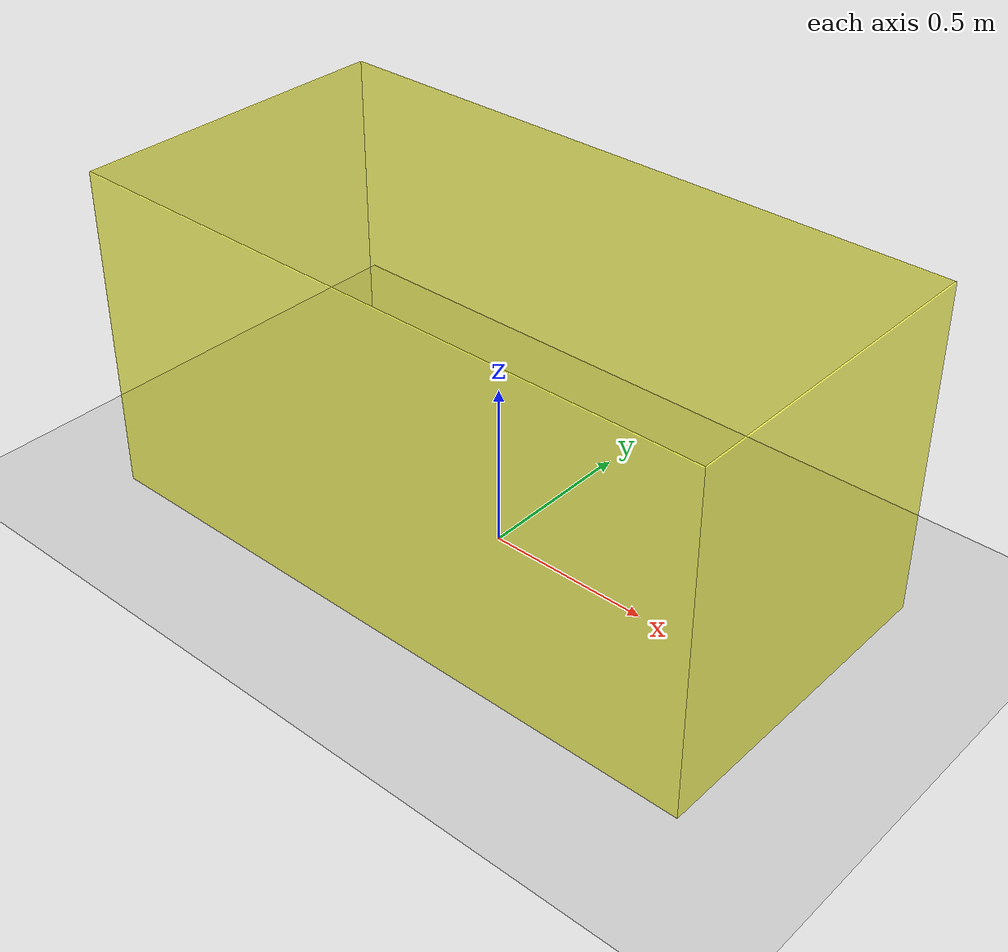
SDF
<sdf version="1.8">
 <world name="demo">
  <plugin filename="gz-sim-physics-system" name="gz::sim::systems::Physics"/>
  <plugin filename="gz-sim-sensors-system" name="gz::sim::systems::Sensors">
   <render_engine>ogre2</render_engine>
  </plugin>
  <plugin filename="gz-sim-scene-broadcaster-system" name="gz::sim::systems::SceneBroadcaster"/>
  <plugin filename="gz-sim-user-commands-system" name="gz::sim::systems::UserCommands"/>
  <plugin filename="BasicSystem" name="ros_gz_example_gazebo::BasicSystem"/>
  <plugin filename="FullSystem" name="ros_gz_example_gazebo::FullSystem"/>
  <light name="sun" type="directional">
   <pose>0 0 10 0 0 0</pose>
   <diffuse>0.8 0.8 0.8 1</diffuse>
   <specular>0.2 0.2 0.2 1</specular>
   <attenuation>
    <range>1000</range>
    <constant>0.9</constant>
    <linear>0.01</linear>
    <quadratic>0.001</quadratic>
   </attenuation>
   <direction>-0.5 0.1 -0.9</direction>
  </light>
  <model name="ground_plane">
   <static>true</static>
   <link name="link">
    <collision name="collision">
     <geometry><plane><normal>0 0 1</normal><size>100 100</size></plane></geometry>
    </collision>
    <visual name="visual">
     <geometry><plane><normal>0 0 1</normal><size>100 100</size></plane></geometry>
     <material>
      <ambient>0.8 0.8 0.8 1</ambient>
      <diffuse>0.8 0.8 0.8 1</diffuse>
      <specular>0.8 0.8 0.8 1</specular>
     </material>
    </visual>
   </link>
  </model>
  <model name="Cellule" canonical_link="Bas">
   <static>true</static>
   <link name="Bas">
    <pose relative_to="__model__">0 0 0 0 0 0</pose>
    <inertial>
     <mass>12</mass>
     <inertia><ixx>1</ixx><ixy>0</ixy><ixz>0</ixz><iyy>4</iyy><iyz>0</iyz><izz>5</izz></inertia>
    </inertial>
    <visual name="visual">
     <geometry><box><size>2.0 1.0 0.005</size></box></geometry>
     <material>
      <ambient>1.0 1.0 0 0.6</ambient>
      <diffuse>1.0 1.0 0 0.6</diffuse>
      <specular>1.0 1.0 0 0.6</specular>
     </material>
    </visual>
    <collision name="collision"><geometry><box><size>2.0 1.0 0.005</size></box></geometry></collision>
   </link>
   <link name="Fond">
    <pose relative_to="fixed_bas_fond">0 0 0 0 0 0</pose>
    <inertial>
     <mass>12</mass>
     <inertia><ixx>1</ixx><ixy>0</ixy><ixz>0</ixz><iyy>4</iyy><iyz>0</iyz><izz>5</izz></inertia>
    </inertial>
    <visual name="visual">
     <geometry><box><size>2.0 1.0 0.005</size></box></geometry>
     <material>
      <ambient>1.0 1.0 0 0.6</ambient>
      <diffuse>1.0 1.0 0 0.6</diffuse>
      <specular>1.0 1.0 0 0.6</specular>
     </material>
    </visual>
    <collision name="collision"><geometry><box><size>2.0 1.0 0.005</size></box></geometry></collision>
   </link>
   <link name="Devant">
    <pose relative_to="fixed_bas_devant">0 0 0 0 0 0</pose>
    <inertial>
     <mass>12</mass>
     <inertia><ixx>1</ixx><ixy>0</ixy><ixz>0</ixz><iyy>4</iyy><iyz>0</iyz><izz>5</izz></inertia>
    </inertial>
    <visual name="visual">
     <geometry><box><size>2.0 1.0 0.005</size></box></geometry>
     <material>
      <ambient>1.0 1.0 0 0.6</ambient>
      <diffuse>1.0 1.0 0 0.6</diffuse>
      <specular>1.0 1.0 0 0.6</specular>
     </material>
    </visual>
    <collision name="collision"><geometry><box><size>2.0 1.0 0.005</size></box></geometry></collision>
   </link>
   <link name="Droite">
    <pose relative_to="fixed_bas_droite">0 0 0 0 0 0</pose>
    <inertial>
     <mass>6</mass>
     <inertia><ixx>0.5</ixx><ixy>0</ixy><ixz>0</ixz><iyy>0.5</iyy><iyz>0</iyz><izz>1</izz></inertia>
    </inertial>
    <visual name="visual">
     <geometry><box><size>1.0 1.0 0.005</size></box></geometry>
     <material>
      <ambient>1.0 1.0 0 0.6</ambient>
      <diffuse>1.0 1.0 0 0.6</diffuse>
      <specular>1.0 1.0 0 0.6</specular>
     </material>
    </visual>
    <collision name="collision"><geometry><box><size>1.0 1.0 0.005</size></box></geometry></collision>
   </link>
   <link name="Gauche">
    <pose relative_to="fixed_bas_gauche">0 0 0 0 0 0</pose>
    <inertial>
     <mass>6</mass>
     <inertia><ixx>0.5</ixx><ixy>0</ixy><ixz>0</ixz><iyy>0.5</iyy><iyz>0</iyz><izz>1</izz></inertia>
    </inertial>
    <visual name="visual">
     <geometry><box><size>1.0 1.0 0.005</size></box></geometry>
     <material>
      <ambient>1.0 1.0 0 0.6</ambient>
      <diffuse>1.0 1.0 0 0.6</diffuse>
      <specular>1.0 1.0 0 0.6</specular>
     </material>
    </visual>
    <collision name="collision"><geometry><box><size>1.0 1.0 0.005</size></box></geometry></collision>
   </link>
   <joint name="fixed_bas_fond" type="fixed">
    <pose relative_to="Bas">0 -0.5 0.5 -1.5707 0 0</pose>
    <parent>Bas</parent>
    <child>Fond</child>
   </joint>
   <joint name="fixed_bas_devant" type="fixed">
    <pose relative_to="Bas">0 0.5 0.5 -1.5707 0 0</pose>
    <parent>Bas</parent>
    <child>Devant</child>
   </joint>
   <joint name="fixed_bas_gauche" type="fixed">
    <pose relative_to="Bas">1 0 0.5 0 1.5707 0</pose>
    <parent>Bas</parent>
    <child>Gauche</child>
   </joint>
   <joint name="fixed_bas_droite" type="fixed">
    <pose relative_to="Bas">-1 0 0.5 0 1.5707 0</pose>
    <parent>Bas</parent>
    <child>Droite</child>
   </joint>
  </model>
 </world>
</sdf>
